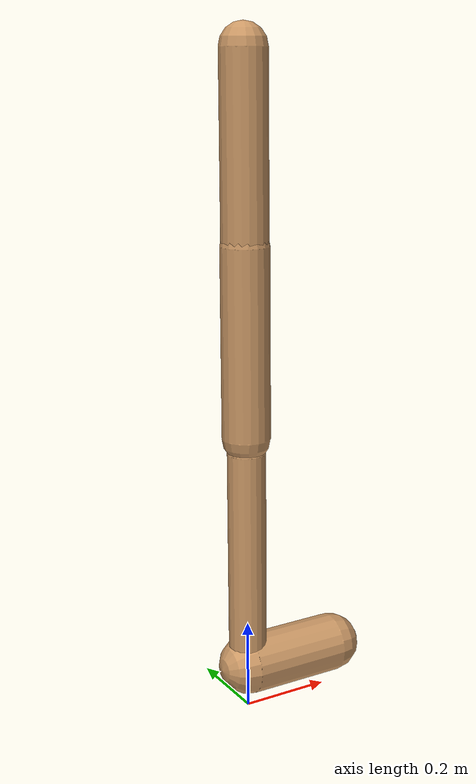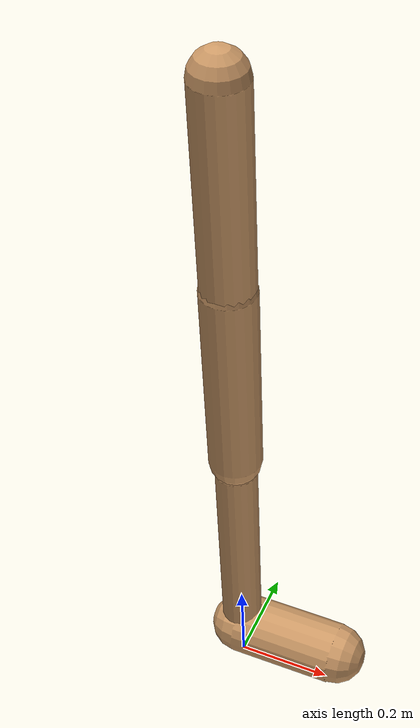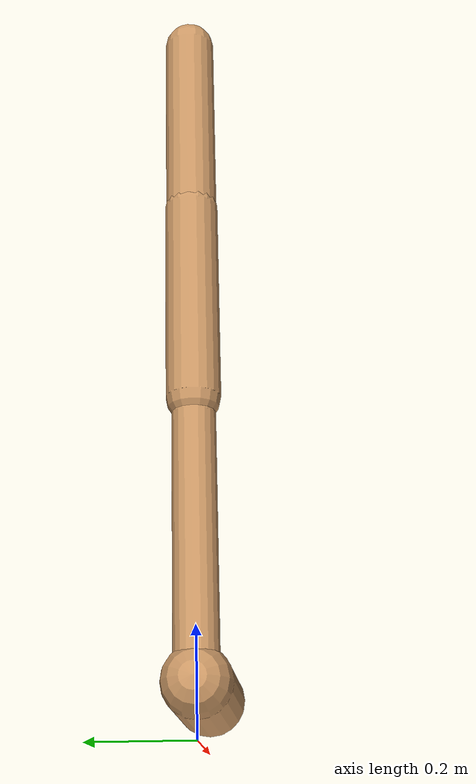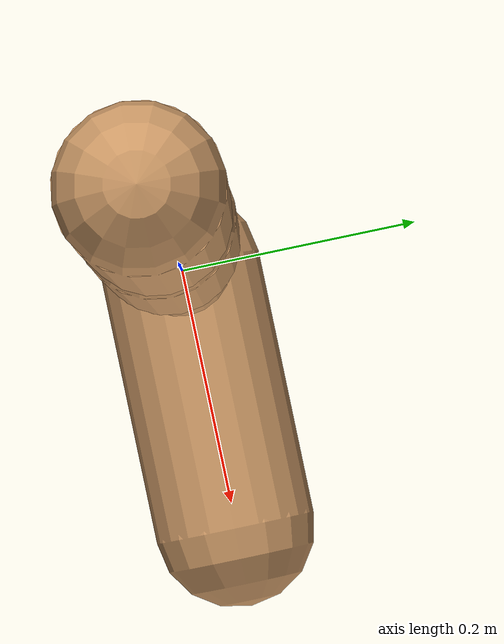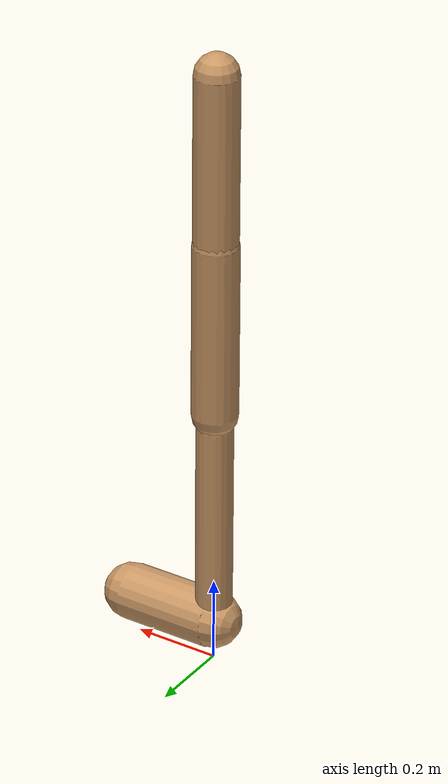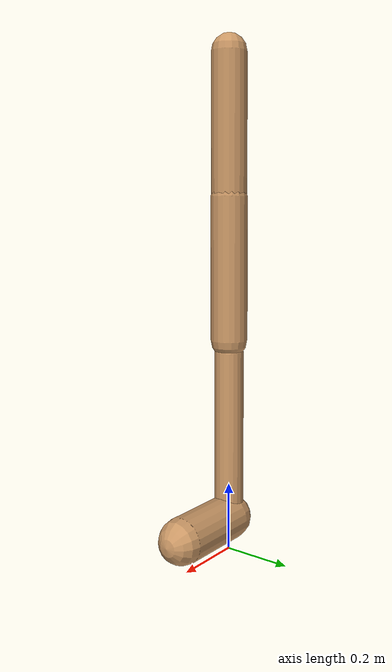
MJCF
<mujoco model="walker2d">
  <compiler angle="degree" coordinate="global" inertiafromgeom="true" />
  <default>
    <joint armature="0.01" damping=".1" limited="true" />
    <geom conaffinity="0" condim="3" contype="1" density="1000" friction="0.8 .1 .1" rgba="0.8 0.6 .4 1" />
  </default>
  <option integrator="RK4" timestep="0.002" />
  <worldbody>

    <body name="torso" pos="0 0 -0.07224558613111158">
      <joint armature="0" axis="1 0 0" damping="0" limited="false" name="ignorex" pos="0 0 0" stiffness="0" type="slide" />
      <joint armature="0" axis="0 0 1" damping="0" limited="false" name="ignorez" pos="0 0 0" ref="1.25" stiffness="0" type="slide" />
      <joint armature="0" axis="0 1 0" damping="0" limited="false" name="ignorey" pos="0 0 0" stiffness="0" type="hinge" />
      <geom fromto="0 0 1.45 0 0 1.05" name="torso_geom" size="0.05110916962831627" type="capsule" />
      <body name="thigh">
        <joint axis="0 -1 0" name="thigh_joint" pos="0 0 1.05" range="-150 0" type="hinge" />
        <geom fromto="0.0 0.0 1.05 0.0 0.0 0.6342215934305265" name="thigh_geom" size="0.053132049137193806" type="capsule" />
        <body name="leg" pos="0.0 0.0 0.03422159343052655">
          <joint axis="0 -1 0" name="leg_joint" pos="0 0 0.6" range="-150 0" type="hinge" />
          <geom fromto="0.0 0.0 0.6 0.0 0.0 0.13802399270058505" name="leg_geom" size="0.042505639309755046" type="capsule" />
          <body name="foot" pos="0.0 0.0 0.03802399270058504">
            <joint axis="0 -1 0" name="foot_joint" pos="0 0 0.1" range="-45 45" type="hinge" />
            <geom fromto="-0.0 0.0 0.09999999999999999 0.21994311580217274 0.0 0.09999999999999999" name="foot_geom" size="0.06580644512254245" type="capsule" />
          </body>
        </body>
      </body>

      <body name="thigh_left">
        <joint axis="0 -1 0" name="thigh_left_joint" pos="0 0 1.05" range="-150 0" type="hinge" />
        <geom fromto="0.0 0.0 1.05 0.0 0.0 0.6342215934305265" name="thigh_left_geom" rgba=".7 .3 .6 1" size="0.053132049137193806" type="capsule" />
        <body name="leg_left" pos="0.0 0.0 0.03422159343052655">
          <joint axis="0 -1 0" name="leg_left_joint" pos="0 0 0.6" range="-150 0" type="hinge" />
          <geom fromto="0.0 0.0 0.6 0.0 0.0 0.13802399270058505" name="leg_left_geom" rgba=".7 .3 .6 1" size="0.042505639309755046" type="capsule" />
          <body name="foot_left" pos="0.0 0.0 0.03802399270058504">
            <joint axis="0 -1 0" name="foot_left_joint" pos="0 0 0.1" range="-45 45" type="hinge" />
            <geom fromto="-0.0 0.0 0.09999999999999999 0.21994311580217274 0.0 0.09999999999999999" name="foot_left_geom" rgba=".7 .3 .6 1" size="0.06580644512254245" type="capsule" />
          </body>
        </body>
      </body>
    </body>
  </worldbody>
  <actuator>

    <motor ctrllimited="true" ctrlrange="-1.0 1.0" gear="100" joint="thigh_joint" />
    <motor ctrllimited="true" ctrlrange="-1.0 1.0" gear="100" joint="leg_joint" />
    <motor ctrllimited="true" ctrlrange="-1.0 1.0" gear="100" joint="foot_joint" />
    <motor ctrllimited="true" ctrlrange="-1.0 1.0" gear="100" joint="thigh_left_joint" />
    <motor ctrllimited="true" ctrlrange="-1.0 1.0" gear="100" joint="leg_left_joint" />
    <motor ctrllimited="true" ctrlrange="-1.0 1.0" gear="100" joint="foot_left_joint" />

  </actuator>
</mujoco>
